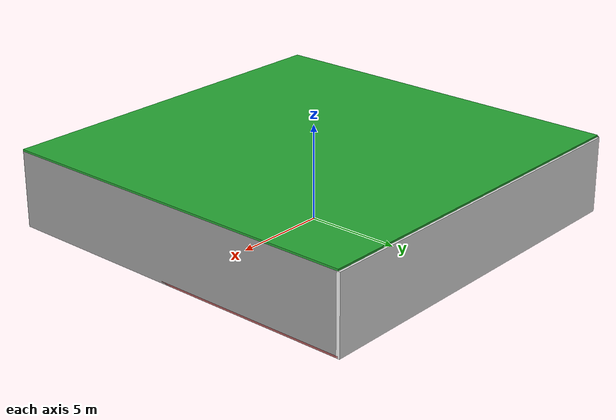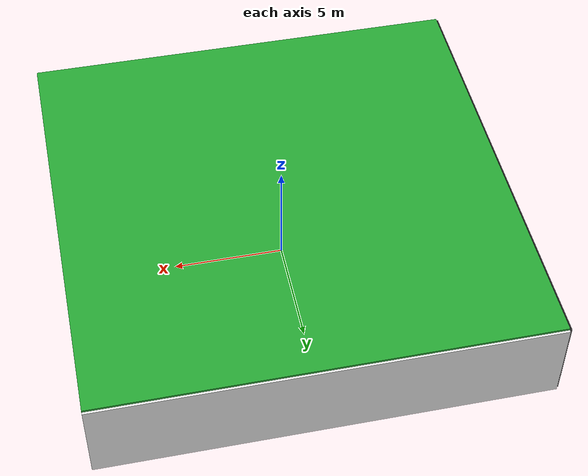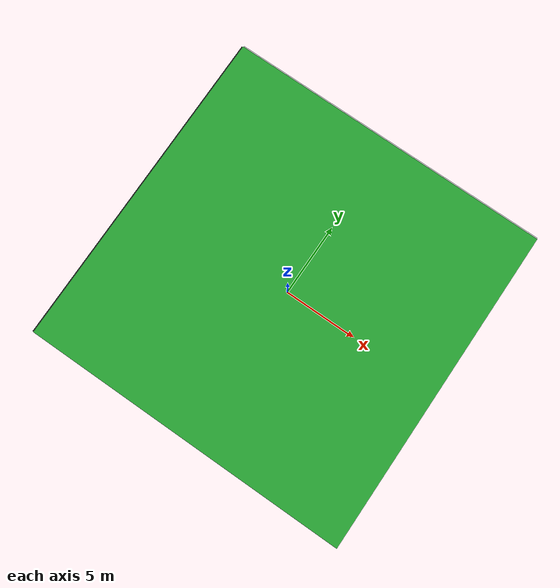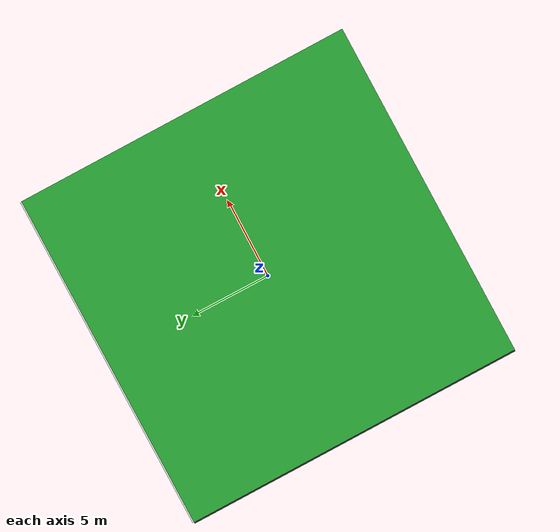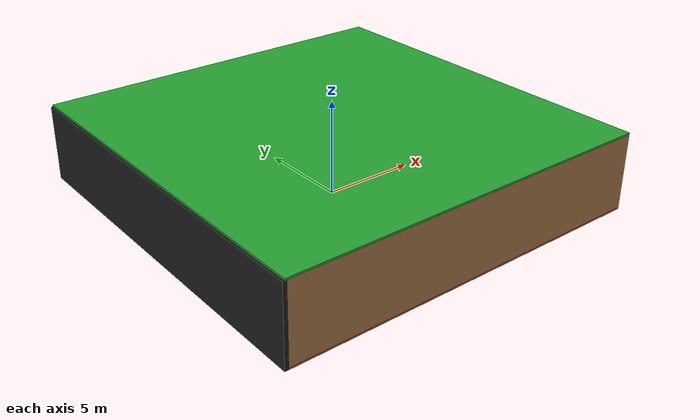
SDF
<sdf version="1.4">
 <world name="default">
  <physics type="ode">
   <max_step_size>0.001</max_step_size>
   <real_time_factor>1</real_time_factor>
   <real_time_update_rate>1000</real_time_update_rate>
   <gravity>0 0 -9.8</gravity>
  </physics>
  <scene><ambient>0.4 0.4 0.4 1</ambient><background>0.7 0.7 0.7 1</background><shadows>1</shadows></scene>
  <model name="Surrounding">
   <static>1</static>
   <link name="Ceiling">
    <collision name="Ceiling_Collision"><geometry><box><size>20 20 0.1</size></box></geometry></collision>
    <visual name="Ceiling_Visual">
     <geometry><box><size>20 20 0.1</size></box></geometry>
     <material>
      <script><uri>file://media/materials/scripts/gazebo.material</uri><name>Gazebo/GreenGlow</name></script>
     </material>
    </visual>
    <pose>0 0 4.05 0 0 0</pose>
   </link>
   <link name="Wall_South">
    <collision name="Wall_South_Collision">
     <geometry><box><size>20 0 4</size></box></geometry>
     <pose>0 0 2 0 -0 0</pose>
    </collision>
    <visual name="Wall_South_Visual">
     <pose>0 0 2 0 -0 0</pose>
     <geometry><box><size>20 0 4</size></box></geometry>
     <material>
      <script><uri>file://media/materials/scripts/gazebo.material</uri><name>Gazebo/WoodFloor</name></script>
     </material>
    </visual>
    <velocity_decay><linear>0</linear><angular>0</angular></velocity_decay>
    <pose>0 -10 0 0 -0 0</pose>
   </link>
   <link name="Wall_East">
    <collision name="Wall_21_Collision">
     <geometry><box><size>20 0 4</size></box></geometry>
     <pose>0 0 2 0 -0 0</pose>
    </collision>
    <visual name="Wall_21_Visual">
     <pose>0 0 2 0 -0 0</pose>
     <geometry><box><size>20 0 4</size></box></geometry>
     <material>
      <script><uri>file://media/materials/scripts/gazebo.material</uri><name>Gazebo/Grey</name></script>
     </material>
    </visual>
    <velocity_decay><linear>0</linear><angular>0</angular></velocity_decay>
    <pose>10 0 0 0 -0 1.5708</pose>
   </link>
   <link name="Wall_North">
    <collision name="Wall_22_Collision">
     <geometry><box><size>20 0.2 4</size></box></geometry>
     <pose>0 0 2 0 -0 0</pose>
    </collision>
    <visual name="Wall_22_Visual">
     <pose>0 0 2 0 -0 0</pose>
     <geometry><box><size>20 0.2 4</size></box></geometry>
     <material>
      <script><uri>file://media/materials/scripts/gazebo.material</uri><name>Gazebo/WhiteGlow</name></script>
     </material>
    </visual>
    <velocity_decay><linear>0</linear><angular>0</angular></velocity_decay>
    <pose>0 10 0 0 -0 0</pose>
   </link>
   <link name="Wall_West">
    <collision name="Wall_23_Collision">
     <geometry><box><size>20 0.2 4</size></box></geometry>
     <pose>0 0 2 0 -0 0</pose>
    </collision>
    <visual name="Wall_23_Visual">
     <pose>0 0 2 0 -0 0</pose>
     <geometry><box><size>20 0.2 4</size></box></geometry>
     <material>
      <script><uri>file://media/materials/scripts/gazebo.material</uri><name>Gazebo/Black</name></script>
     </material>
    </visual>
    <velocity_decay><linear>0</linear><angular>0</angular></velocity_decay>
    <pose>-10 0 0 0 0 -1.5708</pose>
   </link>
   <link name="Ground_link">
    <collision name="collision">
     <pose>0 0 .05 0 -0 0</pose>
     <geometry><box><size>20 20 0.1</size></box></geometry>
    </collision>
    <visual name="visual">
     <pose>0 0 .05 0 -0 0</pose>
     <geometry><box><size>20 20 0.1</size></box></geometry>
     <material>
      <script><uri>file://media/materials/scripts/gazebo.material</uri><name>Gazebo/RedTransparent</name></script>
     </material>
    </visual>
   </link>
   <static>1</static>
  </model>
  <spherical_coordinates>
   <surface_model>EARTH_WGS84</surface_model>
   <latitude_deg>0</latitude_deg>
   <longitude_deg>0</longitude_deg>
   <elevation>0</elevation>
   <heading_deg>0</heading_deg>
  </spherical_coordinates>
  <light name="lightball_0" type="diffuse">
   <diffuse>0.8 0.8 0.8 1</diffuse>
   <specular>0.2 0.2 0.2 1</specular>
   <attenuation>
    <range>100</range>
    <constant>0.7</constant>
    <linear>0.01</linear>
    <quadratic>0.001</quadratic>
   </attenuation>
   <direction>-0.5 0.1 -0.9</direction>
   <pose>3.25126155753 4.02784331224 2.43923383055 0 0 0</pose>
  </light>
  <light name="lightball_1" type="diffuse">
   <diffuse>0.8 0.8 0.8 1</diffuse>
   <specular>0.2 0.2 0.2 1</specular>
   <attenuation>
    <range>100</range>
    <constant>0.7</constant>
    <linear>0.01</linear>
    <quadratic>0.001</quadratic>
   </attenuation>
   <direction>-0.5 0.1 -0.9</direction>
   <pose>-3.79681876531 2.0583300317 1.63797452262 0 0 0</pose>
  </light>
  <light name="lightball_2" type="diffuse">
   <diffuse>0.8 0.8 0.8 1</diffuse>
   <specular>0.2 0.2 0.2 1</specular>
   <attenuation>
    <range>100</range>
    <constant>0.7</constant>
    <linear>0.01</linear>
    <quadratic>0.001</quadratic>
   </attenuation>
   <direction>-0.5 0.1 -0.9</direction>
   <pose>3.87032304851 3.19496881191 2.87052703521 0 0 0</pose>
  </light>
  <light name="lightball_3" type="diffuse">
   <diffuse>0.8 0.8 0.8 1</diffuse>
   <specular>0.2 0.2 0.2 1</specular>
   <attenuation>
    <range>100</range>
    <constant>0.7</constant>
    <linear>0.01</linear>
    <quadratic>0.001</quadratic>
   </attenuation>
   <direction>-0.5 0.1 -0.9</direction>
   <pose>-6.52371040545 1.62414007006 3.74899179911 0 0 0</pose>
  </light>
  <light name="lightball_4" type="diffuse">
   <diffuse>0.8 0.8 0.8 1</diffuse>
   <specular>0.2 0.2 0.2 1</specular>
   <attenuation>
    <range>100</range>
    <constant>0.7</constant>
    <linear>0.01</linear>
    <quadratic>0.001</quadratic>
   </attenuation>
   <direction>-0.5 0.1 -0.9</direction>
   <pose>0.299225569931 -0.207265601949 1.9579190454 0 0 0</pose>
  </light>
  <light name="lightball_5" type="diffuse">
   <diffuse>0.8 0.8 0.8 1</diffuse>
   <specular>0.2 0.2 0.2 1</specular>
   <attenuation>
    <range>100</range>
    <constant>0.7</constant>
    <linear>0.01</linear>
    <quadratic>0.001</quadratic>
   </attenuation>
   <direction>-0.5 0.1 -0.9</direction>
   <pose>-3.34189165442 9.36087073426 1.211088975 0 0 0</pose>
  </light>
  <light name="lightball_6" type="diffuse">
   <diffuse>0.8 0.8 0.8 1</diffuse>
   <specular>0.2 0.2 0.2 1</specular>
   <attenuation>
    <range>100</range>
    <constant>0.7</constant>
    <linear>0.01</linear>
    <quadratic>0.001</quadratic>
   </attenuation>
   <direction>-0.5 0.1 -0.9</direction>
   <pose>-9.46189656405 -6.39731037612 0.784267522269 0 0 0</pose>
  </light>
  <light name="lightball_7" type="diffuse">
   <diffuse>0.8 0.8 0.8 1</diffuse>
   <specular>0.2 0.2 0.2 1</specular>
   <attenuation>
    <range>100</range>
    <constant>0.7</constant>
    <linear>0.01</linear>
    <quadratic>0.001</quadratic>
   </attenuation>
   <direction>-0.5 0.1 -0.9</direction>
   <pose>-4.81028831479 9.16506868526 3.85215804983 0 0 0</pose>
  </light>
  <light name="lightball_8" type="diffuse">
   <diffuse>0.8 0.8 0.8 1</diffuse>
   <specular>0.2 0.2 0.2 1</specular>
   <attenuation>
    <range>100</range>
    <constant>0.7</constant>
    <linear>0.01</linear>
    <quadratic>0.001</quadratic>
   </attenuation>
   <direction>-0.5 0.1 -0.9</direction>
   <pose>-5.94455060524 2.73662408856 3.47442082009 0 0 0</pose>
  </light>
  <light name="lightball_9" type="diffuse">
   <diffuse>0.8 0.8 0.8 1</diffuse>
   <specular>0.2 0.2 0.2 1</specular>
   <attenuation>
    <range>100</range>
    <constant>0.7</constant>
    <linear>0.01</linear>
    <quadratic>0.001</quadratic>
   </attenuation>
   <direction>-0.5 0.1 -0.9</direction>
   <pose>-0.655428114836 -4.27504540375 2.87484640761 0 0 0</pose>
  </light>
  <light name="lightball_10" type="diffuse">
   <diffuse>0.8 0.8 0.8 1</diffuse>
   <specular>0.2 0.2 0.2 1</specular>
   <attenuation>
    <range>100</range>
    <constant>0.7</constant>
    <linear>0.01</linear>
    <quadratic>0.001</quadratic>
   </attenuation>
   <direction>-0.5 0.1 -0.9</direction>
   <pose>1.22243781283 4.09698045699 3.03687360045 0 0 0</pose>
  </light>
  <light name="lightball_11" type="diffuse">
   <diffuse>0.8 0.8 0.8 1</diffuse>
   <specular>0.2 0.2 0.2 1</specular>
   <attenuation>
    <range>100</range>
    <constant>0.7</constant>
    <linear>0.01</linear>
    <quadratic>0.001</quadratic>
   </attenuation>
   <direction>-0.5 0.1 -0.9</direction>
   <pose>4.80904956826 7.50351591073 3.72535876411 0 0 0</pose>
  </light>
  <include><uri>model://cabinet</uri><pose>-6.76248739813 1.512084837 0 0 0 0.434678793378</pose></include>
  <include><uri>model://cabinet</uri><pose>1.9274461696 -7.07971452781 0 0 0 0.8574161043</pose></include>
  <include>
   <uri>model://textured_shapes</uri>
   <pose>1.64508430085 -2.18150326436 0 0 0 2.24868216093</pose>
  </include>
  <include><uri>model://table</uri><pose>3.96005517388 -3.83453200874 0 0 0 0.632617381915</pose></include>
  <include><uri>model://cabinet</uri><pose>8.08409606441 -7.96319356744 0 0 0 2.68122362114</pose></include>
  <include><uri>model://cabinet</uri><pose>7.67357577061 -5.13785989645 0 0 0 3.02698474556</pose></include>
  <include><uri>model://cabinet</uri><pose>7.92791751304 4.98716637391 0 0 0 2.9368635207</pose></include>
 </world>
</sdf>

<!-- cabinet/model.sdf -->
<sdf version="1.5">
  <model name="cabinet">
    <static>true</static>
    <link name="cabinet_bottom_plate">
      <inertial>
        <pose>0 0 -1 0 0 0</pose>
        <inertia>
          <ixx>2.050000</ixx>
          <ixy>0</ixy>
          <ixz>0</ixz>
          <iyy>2.050000</iyy>
          <iyz>0</iyz>
          <izz>2.050000</izz>
        </inertia>
        <mass>25.000000</mass>
      </inertial>
      <collision name="cabinet_bottom_plate_geom">
        <pose>0 0 0.010000 0 0 0</pose>
        <geometry>
          <box>
            <size>0.450000 0.450000 0.020000</size>
          </box>
        </geometry>
      </collision>
      <visual name="cabinet_bottom_plate_geom_visual">
        <pose>0 0 0.010000 0 0 0</pose>
        <geometry>
          <box>
            <size>0.450000 0.450000 0.020000</size>
          </box>
        </geometry>
        <material>
          <script>
            <uri>model://media/materials/scripts/gazebo.material</uri>
            <name>Gazebo/Wood</name>
          </script>
        </material>
      </visual>
      <collision name="cabinet_bottom_plate_geom_cabinet_back_plate">
        <pose>0.235000 0 0.510000 0 0 0</pose>
        <geometry>
          <box>
            <size>0.020000 0.450000 1.020000</size>
          </box>
        </geometry>
      </collision>
      <visual name="cabinet_bottom_plate_geom_cabinet_back_plate_visual">
        <pose>0.235000 0 0.510000 0 0 0</pose>
        <geometry>
          <box>
            <size>0.020000 0.450000 1.020000</size>
          </box>
        </geometry>
        <material>
          <script>
            <uri>model://media/materials/scripts/gazebo.material</uri>
            <name>Gazebo/Wood</name>
          </script>
        </material>
      </visual>
      <collision name="cabinet_bottom_plate_geom_cabinet_left_plate">
        <pose>0 0.235000 0.510000 0 0 0</pose>
        <geometry>
          <box>
            <size>0.450000 0.020000 1.020000</size>
          </box>
        </geometry>
      </collision>
      <visual name="cabinet_bottom_plate_geom_cabinet_left_plate_visual">
        <pose>0 0.235000 0.510000 0 0 0</pose>
        <geometry>
          <box>
            <size>0.450000 0.020000 1.020000</size>
          </box>
        </geometry>
        <material>
          <script>
            <uri>model://media/materials/scripts/gazebo.material</uri>
            <name>Gazebo/Wood</name>
          </script>
        </material>
      </visual>
      <collision name="cabinet_bottom_plate_geom_cabinet_middle_plate">
        <pose>0 0 0.510000 0 0 0</pose>
        <geometry>
          <box>
            <size>0.450000 0.450000 0.020000</size>
          </box>
        </geometry>
      </collision>
      <visual name="cabinet_bottom_plate_geom_cabinet_middle_plate_visual">
        <pose>0 0 0.510000 0 0 0</pose>
        <geometry>
          <box>
            <size>0.450000 0.450000 0.020000</size>
          </box>
        </geometry>
        <material>
          <script>
            <uri>model://media/materials/scripts/gazebo.material</uri>
            <name>Gazebo/Wood</name>
          </script>
        </material>
      </visual>
      <collision name="cabinet_bottom_plate_geom_cabinet_right_plate">
        <pose>0 -0.235000 0.510000 0 0 0</pose>
        <geometry>
          <box>
            <size>0.450000 0.020000 1.020000</size>
          </box>
        </geometry>
      </collision>
      <visual name="cabinet_bottom_plate_geom_cabinet_right_plate_visual">
        <pose>0 -0.235000 0.510000 0 0 0</pose>
        <geometry>
          <box>
            <size>0.450000 0.020000 1.020000</size>
          </box>
        </geometry>
        <material>
          <script>
            <uri>model://media/materials/scripts/gazebo.material</uri>
            <name>Gazebo/Wood</name>
          </script>
        </material>
      </visual>
      <collision name="cabinet_bottom_plate_geom_cabinet_top_plate">
        <pose>0 0 1.010000 0 0 0</pose>
        <geometry>
          <box>
            <size>0.450000 0.450000 0.020000</size>
          </box>
        </geometry>
      </collision>
      <visual name="cabinet_bottom_plate_geom_cabinet_top_plate_visual">
        <pose>0 0 1.010000 0 0 0</pose>
        <geometry>
          <box>
            <size>0.450000 0.450000 0.020000</size>
          </box>
        </geometry>
        <material>
          <script>
            <uri>model://media/materials/scripts/gazebo.material</uri>
            <name>Gazebo/Wood</name>
          </script>
        </material>
      </visual>
    </link>
  </model>
</sdf>

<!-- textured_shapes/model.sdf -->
<sdf version="1.6">
  <model name="textured_shapes">
    <pose>0 0 0.5 0 0 0</pose>
    <link name="box">
      <pose>0 -1.5 0 0 0 0</pose>
      <collision name="collision">
        <geometry>
          <box>
            <size>1 1 1</size>
          </box>
        </geometry>
      </collision>
      <visual name="visual">
        <geometry>
          <box>
            <size>1 1 1</size>
          </box>
        </geometry>
        <material>
          <script>
            <uri>model://../model_source/models/textured_shapes/materials/scripts</uri>
            <uri>model://../model_source/models/textured_shapes/materials/textures</uri>
            <name>TexturedShape/Squares</name>
          </script>
        </material>
      </visual>
    </link>
    <link name="sphere">
      <collision name="collision">
        <geometry>
          <sphere>
            <radius>0.5</radius>
          </sphere>
        </geometry>
      </collision>
      <visual name="visual">
        <geometry>
          <sphere>
            <radius>0.5</radius>
          </sphere>
        </geometry>
        <material>
          <script>
            <uri>model://../model_source/models/textured_shapes/materials/scripts</uri>
            <uri>model://../model_source/models/textured_shapes/materials/textures</uri>
            <name>TexturedShape/Squares</name>
          </script>
        </material>
      </visual>
    </link>
    <link name="cylinder">
      <pose>0 1.5 0 0 0 0</pose>
      <collision name="collision">
        <geometry>
          <cylinder>
            <radius>0.5</radius>
            <length>1</length>
          </cylinder>
        </geometry>
      </collision>
      <visual name="visual">
        <geometry>
          <cylinder>
            <radius>0.5</radius>
            <length>1</length>
          </cylinder>
        </geometry>
        <material>
          <script>
            <uri>model://../model_source/models/textured_shapes/materials/scripts</uri>
            <uri>model://../model_source/models/textured_shapes/materials/textures</uri>
            <name>TexturedShape/Squares</name>
          </script>
        </material>
      </visual>
    </link>
  </model>
</sdf>

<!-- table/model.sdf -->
<sdf version="1.5">
  <model name="table">
    <static>true</static>
    <link name="link">
      <collision name="surface">
        <pose>0 0 1.0 0 0 0</pose>
        <geometry>
          <box>
            <size>1.5 0.8 0.03</size>
          </box>
        </geometry>
        <surface>
          <friction>
            <ode>
              <mu>0.6</mu>
              <mu2>0.6</mu2>
            </ode>
          </friction>
        </surface>
      </collision>
      <visual name="visual1">
        <pose>0 0 1.0 0 0 0</pose>
        <geometry>
          <box>
            <size>1.5 0.8 0.03</size>
          </box>
        </geometry>
        <material>
          <script>
            <uri>model://media/materials/scripts/gazebo.material</uri>
            <name>Gazebo/Wood</name>
          </script>
        </material>
      </visual>
      <collision name="front_left_leg">
        <pose>0.68 0.38 0.5 0 0 0</pose>
        <geometry>
          <cylinder>
            <radius>0.02</radius>
            <length>1.0</length>
          </cylinder>
        </geometry>
      </collision>
      <visual name="front_left_leg">
        <pose>0.68 0.38 0.5 0 0 0</pose>
        <geometry>
          <cylinder>
            <radius>0.02</radius>
            <length>1.0</length>
          </cylinder>
        </geometry>
        <material>
          <script>
            <uri>model://media/materials/scripts/gazebo.material</uri>
            <name>Gazebo/Grey</name>
          </script>
        </material>
      </visual>
      <collision name="front_right_leg">
        <pose>0.68 -0.38 0.5 0 0 0</pose>
        <geometry>
          <cylinder>
            <radius>0.02</radius>
            <length>1.0</length>
          </cylinder>
        </geometry>
      </collision>
      <visual name="front_right_leg">
        <pose>0.68 -0.38 0.5 0 0 0</pose>
        <geometry>
          <cylinder>
            <radius>0.02</radius>
            <length>1.0</length>
          </cylinder>
        </geometry>
        <material>
          <script>
            <uri>model://media/materials/scripts/gazebo.material</uri>
            <name>Gazebo/Grey</name>
          </script>
        </material>
      </visual>
      <collision name="back_right_leg">
        <pose>-0.68 -0.38 0.5 0 0 0</pose>
        <geometry>
          <cylinder>
            <radius>0.02</radius>
            <length>1.0</length>
          </cylinder>
        </geometry>
      </collision>
      <visual name="back_right_leg">
        <pose>-0.68 -0.38 0.5 0 0 0</pose>
        <geometry>
          <cylinder>
            <radius>0.02</radius>
            <length>1.0</length>
          </cylinder>
        </geometry>
        <material>
          <script>
            <uri>model://media/materials/scripts/gazebo.material</uri>
            <name>Gazebo/Grey</name>
          </script>
        </material>
      </visual>
      <collision name="back_left_leg">
        <pose>-0.68 0.38 0.5 0 0 0</pose>
        <geometry>
          <cylinder>
            <radius>0.02</radius>
            <length>1.0</length>
          </cylinder>
        </geometry>
      </collision>
      <visual name="back_left_leg">
        <pose>-0.68 0.38 0.5 0 0 0</pose>
        <geometry>
          <cylinder>
            <radius>0.02</radius>
            <length>1.0</length>
          </cylinder>
        </geometry>
        <material>
          <script>
            <uri>model://media/materials/scripts/gazebo.material</uri>
            <name>Gazebo/Grey</name>
          </script>
        </material>
      </visual>
    </link>
  </model>
</sdf>
